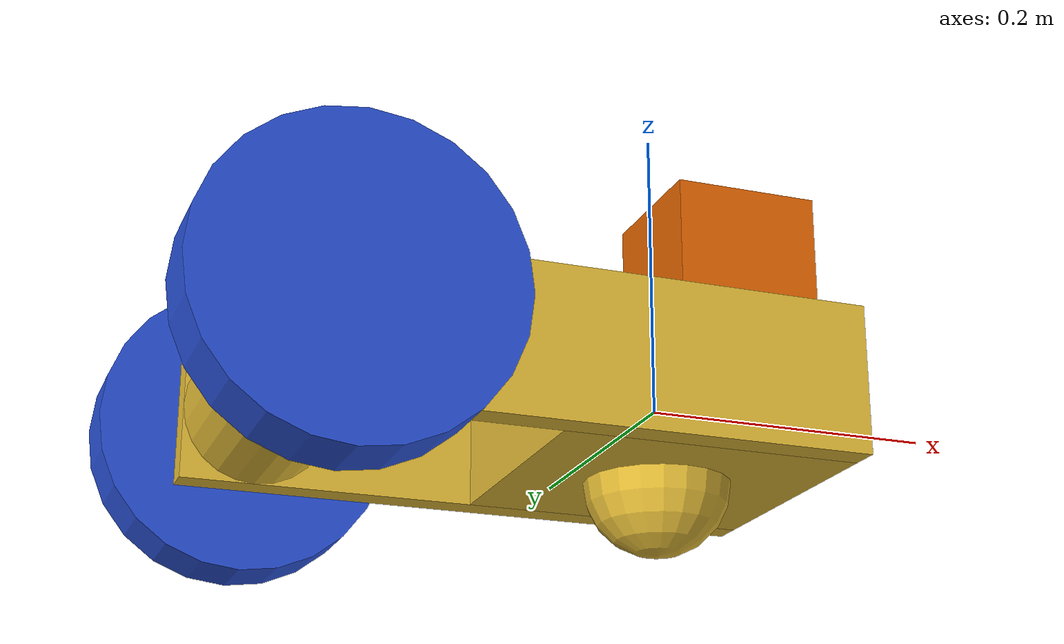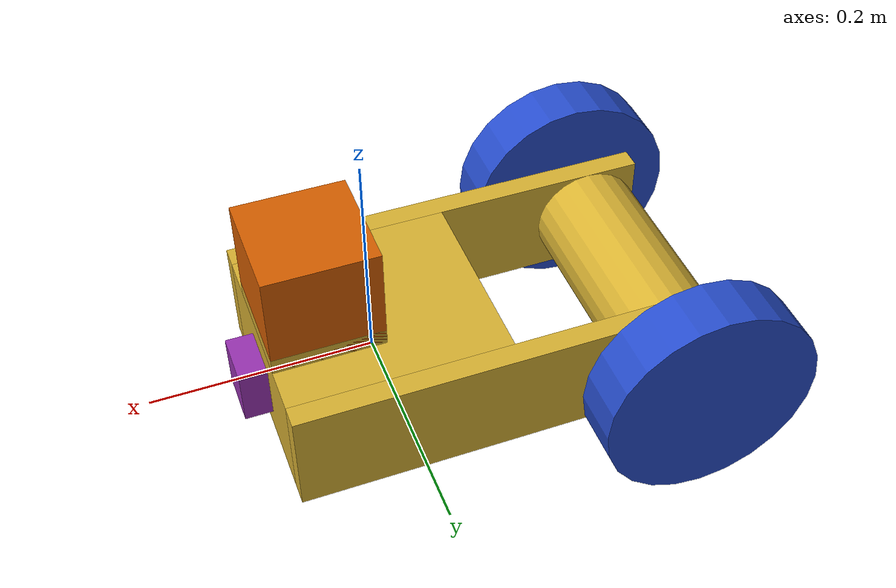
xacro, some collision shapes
<?xml version='1.0'?>

<robot name="not_working" xmlns:xacro="http://www.ros.org/wiki/xacro">

  <link name="robot_footprint"></link>

  <xacro:include filename="$(find my_robot)/urdf/my_robot.gazebo" />

  <joint name="robot_footprint_joint" type="fixed">
    <origin xyz="0 0 0" rpy="0 0 0" />
    <parent link="robot_footprint"/>
    <child link="chassis" />
  </joint>

  <joint type="continuous" name="left_wheel_hinge">
      <origin xyz="-0.25 0.15 0" rpy="0 0 0"/>
      <child link="left_wheel"/>
      <parent link="chassis"/>
      <axis xyz="0 1 0" rpy="0 0 0"/>
      <limit effort="10000" velocity="1000"/>
      <dynamics damping="1.0" friction="1.0"/>
  </joint>

  <joint type="continuous" name="right_wheel_hinge">
      <origin xyz="-0.25 -0.15 0" rpy="0 0 0"/>
      <child link="right_wheel"/>
      <parent link="chassis"/>
      <axis xyz="0 1 0" rpy="0 0 0"/>
      <limit effort="10000" velocity="1000"/>
      <dynamics damping="1.0" friction="1.0"/>
  </joint>

  <joint type="fixed" name="camera_joint">
      <origin xyz="0.1 0 0" rpy="0 0 0"/>
      <child link="camera"/>
      <parent link="chassis"/>
      <axis xyz="0 1 0" rpy="0 0 0"/>
  </joint>

  <joint type="fixed" name="hookuyo_joint">
      <origin xyz="0.05 0 0.1" rpy="0 0 0"/>
      <child link="hokuyo"/>
      <parent link="chassis"/>
      <axis xyz="0 1 0" rpy="0 0 0"/>
  </joint>

  <link name='chassis'>
    <pose>0 0 0.1 0 0 0</pose>

    <inertial>
      <mass value="12.0"/>
      <origin xyz="0.0 0 0" rpy=" 0 0 0"/>
      <inertia
          ixx="0.1" ixy="0" ixz="0"
          iyy="0.1" iyz="0"
          izz="0.1"
      />
    </inertial>

    <collision name='collision'>
      <origin xyz="0 0 0" rpy=" 0 0 0"/>
      <geometry>
        <box size=".2 .18 .1"/>
      </geometry>
    </collision>

    <visual name='chassis_visual'>
      <origin xyz="0 0 0" rpy=" 0 0 0"/>
      <geometry>
        <box size=".2 .18 .1"/>
      </geometry>
    </visual>

    <collision name='front_caster_collision'>
      <origin xyz="0.0 0 -0.05" rpy=" 0 0 0"/>
      <geometry>
        <sphere radius="0.0489"/>
      </geometry>
    </collision>

    <visual name='front_caster_visual'>
      <origin xyz="0.0 0 -0.05" rpy=" 0 0 0"/>
      <geometry>
        <sphere radius="0.049"/>
      </geometry>
    </visual>

    <collision name='right_connection'>
      <origin xyz="-.1 -0.1 0" rpy=" 0 0 0"/>
      <geometry>
        <box size=".4 .02 .1"/>
      </geometry>
    </collision>

    <visual name='right_connection_visual'>
      <origin xyz="-.1 -0.1 0" rpy=" 0 0 0"/>
      <geometry>
        <box size=".4 .02 .1"/>
      </geometry>
    </visual>

    <collision name='left_connection'>
      <origin xyz="-.1 0.1 0" rpy=" 0 0 0"/>
      <geometry>
        <box size=".4 .02 .1"/>
      </geometry>
    </collision>

    <visual name='left_connection_visual'>
      <origin xyz="-.1 0.1 0" rpy=" 0 0 0"/>
      <geometry>
        <box size=".4 .02 .1"/>
      </geometry>
    </visual>

    <collision name='supporting_box'>
      <origin xyz="0.05 0 0.0575" rpy=" 0 0 0"/>
      <geometry>
        <box size=".1 .1 .015"/>
      </geometry>
    </collision>

    <visual name='supporing_box_visual'>
      <origin xyz="0.05 0 0.0575" rpy=" 0 0 0"/>
      <geometry>
        <box size=".1 .1 .015"/>
      </geometry>
    </visual>

    <collision name='cylinder'>
      <origin xyz="-.25 0 0" rpy="0 1.5707 1.5707"/>
      <geometry>
        <cylinder radius=".05" length=".18"/>
      </geometry>
    </collision>

    <visual name='cylinder_visual'>
      <origin xyz="-.25 0 0" rpy="0 1.5707 1.5707"/>
      <geometry>
        <cylinder radius=".05" length=".2"/>
      </geometry>
    </visual>

  </link>

  <link name="left_wheel">
      <inertial>
          <mass value="5.0"/>
          <origin xyz="0 0 0" rpy=" 0 1.5707 1.5707"/>
          <inertia
              ixx="0.1" ixy="0" ixz="0"
              iyy="0.1" iyz="0"
              izz="0.1"
          />
      </inertial>
      <collision>
          <origin xyz="0 0 0" rpy="0 1.5707 1.5707"/>
          <geometry>
              <cylinder radius="0.099" length="0.05"/>
          </geometry>
      </collision>
      <visual>
          <origin xyz="0 0 0" rpy="0 1.5707 1.5707"/>
          <geometry>
              <cylinder radius="0.1" length="0.05"/>
          </geometry>
      </visual>
  </link>

  <link name="right_wheel">
      <inertial>
          <mass value="5.0"/>
          <origin xyz="0 0 0" rpy=" 0 1.5707 1.5707"/>
          <inertia
              ixx="0.1" ixy="0" ixz="0"
              iyy="0.1" iyz="0"
              izz="0.1"
          />
      </inertial>
      <collision>
          <origin xyz="0 0 0" rpy="0 1.5707 1.5707"/>
          <geometry>
              <cylinder radius="0.099" length="0.05"/>
          </geometry>
      </collision>
      <visual>
          <origin xyz="0 0 0" rpy="0 1.5707 1.5707"/>
          <geometry>
              <cylinder radius="0.1" length="0.05"/>
          </geometry>
      </visual>
  </link>

  <link name="camera">
      <inertial>
          <mass value="0.1"/>
          <origin xyz="0 0 0" rpy=" 0 0 0"/>
          <box_inertia  mass="0.1"
                        x="0.05"
                        y="0.05"
                        z="0.05"
              />
          <inertia
              ixx="1e-6" ixy="0" ixz="0"
              iyy="1e-6" iyz="0"
              izz="1e-6"
          />
      </inertial>
      <collision>
          <origin xyz="0 0 0" rpy=" 0 0 0"/>
          <geometry>
              <box size="0.05 0.05 0.05"/>
          </geometry>
      </collision>
      <visual>
          <origin xyz="0 0 0" rpy=" 0 0 0"/>
          <geometry>
              <box size="0.05 0.05 0.05"/>
          </geometry>
      </visual>
  </link>

  <link name="hokuyo">
      <inertial>
          <mass value="1e-5"/>
          <origin xyz="0 0 0" rpy=" 0 0 0"/>
          <inertia
              ixx="1e-6" ixy="0" ixz="0"
              iyy="1e-6" iyz="0"
              izz="1e-6"
          />
      </inertial>
      <collision>
          <origin xyz="0 0 0" rpy=" 0 0 0"/>
          <geometry>
              <box size="0.1 0.1 0.1"/>
          </geometry>
      </collision>
      <visual>
          <origin xyz="0 0 0" rpy=" 0 0 0"/>
          <geometry>
              <mesh filename="package://my_robot/meshes/hokuyo.dae"/>
          </geometry>
      </visual>
  </link>

  <gazebo reference="chassis">
      <material>Gazebo/Gold</material>
  </gazebo>

  <gazebo reference="left_wheel">
      <material>Gazebo/Blue</material>
  </gazebo>

  <gazebo reference="right_wheel">
      <material>Gazebo/Blue</material>
  </gazebo>

  <gazebo reference="camera">
      <material>Gazebo/Purple</material>
  </gazebo>

</robot>
